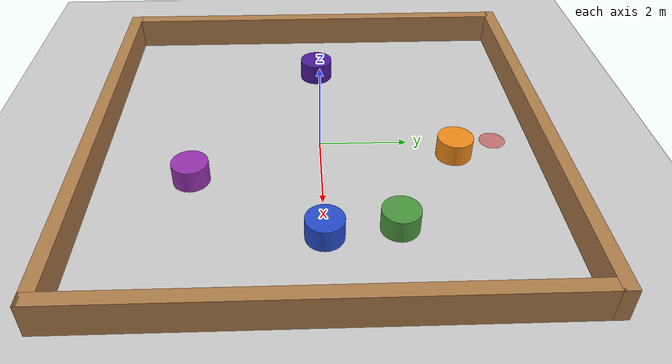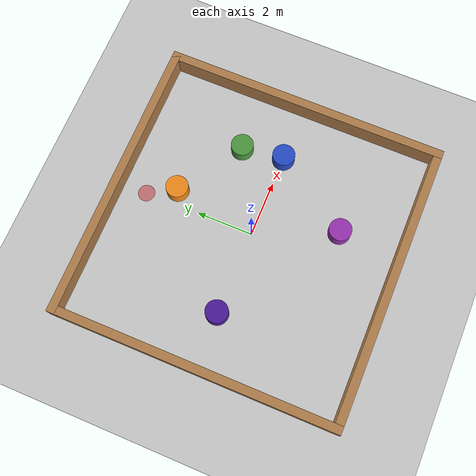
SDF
<sdf version="1.7">
 <world name="default">
  <physics name="default" default="1" type="ode">
   <real_time_update_rate>1000</real_time_update_rate>
   <max_step_size>0.001</max_step_size>
   <real_time_factor>1</real_time_factor>
  </physics>
  <model name="human_1">
   <pose>2.8 1.5 0.25 0 -0 0</pose>
   <link name="link">
    <collision name="collision">
     <geometry><cylinder><radius>0.4</radius><length>0.5</length></cylinder></geometry>
    </collision>
    <visual name="visual">
     <geometry><cylinder><radius>0.4</radius><length>0.5</length></cylinder></geometry>
     <material>
      <script><uri>file://media/materials/scripts/gazebo.material</uri><name>Gazebo/Grass</name></script>
     </material>
    </visual>
    <inertial>
     <inertia><ixx>1</ixx><ixy>0</ixy><ixz>0</ixz><iyy>1</iyy><iyz>0</iyz><izz>1</izz></inertia>
     <mass>1</mass>
    </inertial>
    <kinematic>1</kinematic>
   </link>
   <plugin name="human_1" filename="libobstacle_2.so"/>
   <kinematic>1</kinematic>
  </model>
  <model name="human_2">
   <pose>3 0 0.25 0 -0 0</pose>
   <link name="link">
    <collision name="collision">
     <geometry><cylinder><radius>0.4</radius><length>0.5</length></cylinder></geometry>
    </collision>
    <visual name="visual">
     <geometry><cylinder><radius>0.4</radius><length>0.5</length></cylinder></geometry>
     <material>
      <script><uri>file://media/materials/scripts/gazebo.material</uri><name>Gazebo/Blue</name></script>
     </material>
    </visual>
    <inertial>
     <inertia><ixx>1</ixx><ixy>0</ixy><ixz>0</ixz><iyy>1</iyy><iyz>0</iyz><izz>1</izz></inertia>
     <mass>1</mass>
    </inertial>
    <kinematic>1</kinematic>
   </link>
   <plugin name="human_2" filename="libobstacle_2.so"/>
   <kinematic>1</kinematic>
  </model>
  <model name="human_3">
   <pose>0.5 3 0.25 0 -0 0</pose>
   <link name="link">
    <collision name="collision">
     <geometry><cylinder><radius>0.4</radius><length>0.5</length></cylinder></geometry>
    </collision>
    <visual name="visual">
     <geometry><cylinder><radius>0.4</radius><length>0.5</length></cylinder></geometry>
     <material>
      <script><uri>file://media/materials/scripts/gazebo.material</uri><name>Gazebo/Orange</name></script>
     </material>
    </visual>
    <inertial>
     <inertia><ixx>1</ixx><ixy>0</ixy><ixz>0</ixz><iyy>1</iyy><iyz>0</iyz><izz>1</izz></inertia>
     <mass>1</mass>
    </inertial>
    <kinematic>1</kinematic>
   </link>
   <plugin name="human_3" filename="libobstacle_2.so"/>
   <kinematic>1</kinematic>
  </model>
  <model name="human_4">
   <pose>1.2 -2.8 0.25 0 -0 0</pose>
   <link name="link">
    <collision name="collision">
     <geometry><cylinder><radius>0.4</radius><length>0.5</length></cylinder></geometry>
    </collision>
    <visual name="visual">
     <geometry><cylinder><radius>0.4</radius><length>0.5</length></cylinder></geometry>
     <material>
      <script><uri>file://media/materials/scripts/gazebo.material</uri><name>Gazebo/Purple</name></script>
     </material>
    </visual>
    <inertial>
     <inertia><ixx>1</ixx><ixy>0</ixy><ixz>0</ixz><iyy>1</iyy><iyz>0</iyz><izz>1</izz></inertia>
     <mass>1</mass>
    </inertial>
    <kinematic>1</kinematic>
   </link>
   <plugin name="human_4" filename="libobstacle_2.so"/>
   <kinematic>1</kinematic>
  </model>
  <model name="human_5">
   <pose>-3 0 0.25 0 -0 0</pose>
   <link name="link">
    <collision name="collision">
     <geometry><cylinder><radius>0.4</radius><length>0.5</length></cylinder></geometry>
    </collision>
    <visual name="visual">
     <geometry><cylinder><radius>0.4</radius><length>0.5</length></cylinder></geometry>
     <material>
      <script><uri>file://media/materials/scripts/gazebo.material</uri><name>Gazebo/Indigo</name></script>
     </material>
    </visual>
    <inertial>
     <inertia><ixx>1</ixx><ixy>0</ixy><ixz>0</ixz><iyy>1</iyy><iyz>0</iyz><izz>1</izz></inertia>
     <mass>1</mass>
    </inertial>
    <kinematic>1</kinematic>
   </link>
   <plugin name="human_5" filename="libobstacle_2.so"/>
   <kinematic>1</kinematic>
  </model>
  <model name="ground_plane">
   <static>1</static>
   <link name="link">
    <collision name="collision">
     <geometry><plane><normal>0 0 1</normal><size>100 100</size></plane></geometry>
     <surface>
      <contact><collide_bitmask>65535</collide_bitmask></contact>
      <friction><ode><mu>100</mu><mu2>50</mu2></ode></friction>
     </surface>
    </collision>
    <visual name="visual">
     <cast_shadows>0</cast_shadows>
     <geometry><plane><normal>0 0 1</normal><size>100 100</size></plane></geometry>
     <material>
      <script><uri>file://media/materials/scripts/gazebo.material</uri><name>Gazebo/Grey</name></script>
     </material>
    </visual>
   </link>
  </model>
  <model name="goal">
   <pose>0 4 0.001 0 -0 0</pose>
   <static>1</static>
   <link name="goal">
    <visual name="goal1">
     <geometry><cylinder><radius>0.3</radius><length>0</length></cylinder></geometry>
     <material>
      <script><uri>file://media/materials/scripts/gazebo.material</uri><name>Gazebo/RedTransparent</name></script>
     </material>
    </visual>
   </link>
  </model>
  <light name="sun" type="directional">
   <pose>0 0 20 0 -0 0</pose>
   <diffuse>0.8 0.8 0.8 1</diffuse>
   <specular>0.2 0.2 0.2 1</specular>
   <attenuation>
    <range>1000</range>
    <constant>0.9</constant>
    <linear>0.01</linear>
    <quadratic>0.001</quadratic>
   </attenuation>
   <direction>0 0.5 -0.9</direction>
   <spot><inner_angle>0</inner_angle><outer_angle>0</outer_angle><falloff>0</falloff></spot>
  </light>
  <light name="point_light" type="point">
   <pose>0 -0.377195 6.59868 0 -0 0</pose>
   <diffuse>0.784314 0.784314 0.784314 1</diffuse>
   <specular>0.0980392 0.0980392 0.0980392 1</specular>
   <attenuation>
    <range>50</range>
    <constant>0.8</constant>
    <linear>0</linear>
    <quadratic>0.001</quadratic>
   </attenuation>
   <cast_shadows>0</cast_shadows>
   <direction>0 0 -1</direction>
   <spot><inner_angle>0</inner_angle><outer_angle>0</outer_angle><falloff>0</falloff></spot>
  </light>
  <model name="turtlebot3_square">
   <link name="Wall_0">
    <collision name="Wall_0_Collision">
     <geometry><box><size>10.3 0.3 1</size></box></geometry>
     <pose>0 0 0.25 0 -0 0</pose>
    </collision>
    <visual name="Wall_0_Visual">
     <pose>0 0 0.25 0 -0 0</pose>
     <geometry><box><size>10.3 0.3 1</size></box></geometry>
     <material>
      <script><uri>file://media/materials/scripts/gazebo.material</uri><name>Gazebo/Wood</name></script>
      <ambient>1 1 1 1</ambient>
     </material>
    </visual>
    <pose>0 5 0 0 -0 0</pose>
   </link>
   <link name="Wall_2">
    <collision name="Wall_2_Collision">
     <geometry><box><size>10.3 0.3 1</size></box></geometry>
     <pose>0 0 0.25 0 -0 0</pose>
    </collision>
    <visual name="Wall_2_Visual">
     <pose>0 0 0.25 0 -0 0</pose>
     <geometry><box><size>10.3 0.3 1</size></box></geometry>
     <material>
      <script><uri>file://media/materials/scripts/gazebo.material</uri><name>Gazebo/Wood</name></script>
      <ambient>1 1 1 1</ambient>
     </material>
    </visual>
    <pose>-5 0 0 0 0 -1.5708</pose>
   </link>
   <link name="Wall_3">
    <collision name="Wall_3_Collision">
     <geometry><box><size>10.3 0.3 1</size></box></geometry>
     <pose>0 0 0.25 0 -0 0</pose>
    </collision>
    <visual name="Wall_3_Visual">
     <pose>0 0 0.25 0 -0 0</pose>
     <geometry><box><size>10.3 0.3 1</size></box></geometry>
     <material>
      <script><uri>file://media/materials/scripts/gazebo.material</uri><name>Gazebo/Wood</name></script>
      <ambient>1 1 1 1</ambient>
     </material>
    </visual>
    <pose>0 -5 0 0 -0 0</pose>
   </link>
   <link name="Wall_4">
    <collision name="Wall_4_Collision">
     <geometry><box><size>10.3 0.3 1</size></box></geometry>
     <pose>0 0 0.25 0 -0 0</pose>
    </collision>
    <visual name="Wall_4_Visual">
     <pose>0 0 0.25 0 -0 0</pose>
     <geometry><box><size>10.3 0.3 1</size></box></geometry>
     <material>
      <script><uri>file://media/materials/scripts/gazebo.material</uri><name>Gazebo/Wood</name></script>
      <ambient>1 1 1 1</ambient>
     </material>
    </visual>
    <pose>5 0 0 0 -0 1.5708</pose>
   </link>
   <static>1</static>
  </model>
  <scene><ambient>0.2 0.2 0.2 1</ambient><background>0.7 0.7 0.7 1</background><shadows>1</shadows></scene>
  <gravity>0 0 -9.8</gravity>
  <magnetic_field>6e-06 2.3e-05 -4.2e-05</magnetic_field>
  <atmosphere type="adiabatic"/>
  <spherical_coordinates>
   <surface_model>EARTH_WGS84</surface_model>
   <latitude_deg>0</latitude_deg>
   <longitude_deg>0</longitude_deg>
   <elevation>0</elevation>
   <heading_deg>0</heading_deg>
  </spherical_coordinates>
 </world>
</sdf>
